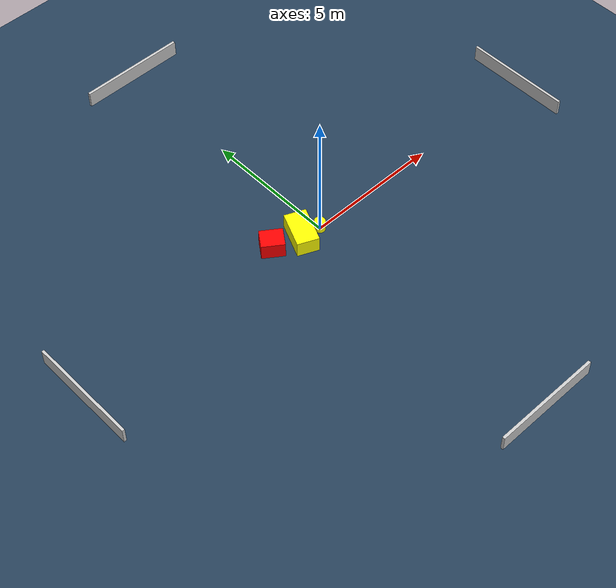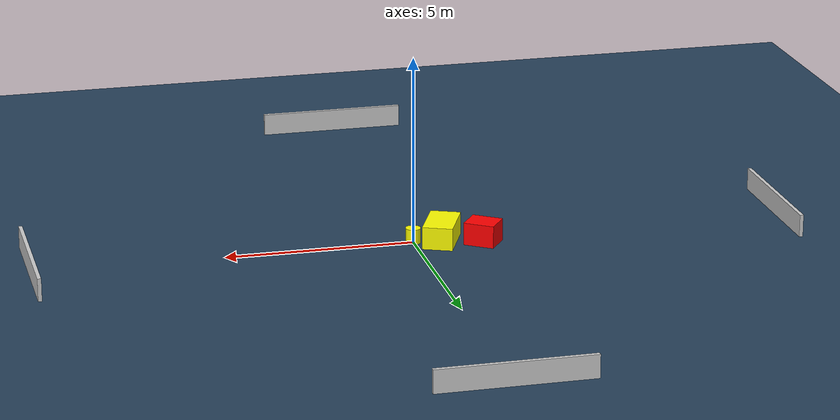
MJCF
<?xml version="1.0" ?>
<mujoco model="generated_environment">
  <option timestep="0.01" integrator="RK4" cone="elliptic"/>
  <default>
    <geom density="1"/>
  </default>
  <asset>
    <texture builtin="gradient" height="3072" name="skybox" rgb1="0.3 0.5 0.7" rgb2="0 0 0" type="skybox" width="512"/>
    <texture builtin="checker" height="300" name="groundplane" rgb1="0.2 0.3 0.4" rgb2="0.1 0.2 0.3" type="2d" width="300"/>
    <material name="groundplane" reflectance="0.2" texrepeat="5 5" texture="groundplane"/>
  </asset>
  <worldbody>
    <light dir="0 0 -1" directional="true" pos="0 0 1.5"/>
    <geom condim="3" friction="0.5 0.005 0.001" material="groundplane" name="floor" pos="0 0 0" size="0 0 0.05" type="plane"/>
    <body name="walls">
      <geom name="wall_1" condim="4" pos="-10.0 0.0 0.3" rgba="0.800000011920929 0.800000011920929 0.800000011920929 1.0" size="0.05 2.0 0.3" type="box"/>
      <geom name="wall_2" condim="4" pos="10.0 0.0 0.3" rgba="0.800000011920929 0.800000011920929 0.800000011920929 1.0" size="0.05 2.0 0.3" type="box"/>
      <geom name="wall_3" condim="4" pos="0.0 -10.0 0.3" rgba="0.800000011920929 0.800000011920929 0.800000011920929 1.0" size="2.0 0.05 0.3" type="box"/>
      <geom name="wall_4" condim="4" pos="0.0 10.0 0.3" rgba="0.800000011920929 0.800000011920929 0.800000011920929 1.0" size="2.0 0.05 0.3" type="box"/>
    </body>
    <body name="robot">
      <joint name="joint_x" type="slide" pos="0 0 0" axis="1 0 0"/>
      <joint name="joint_y" type="slide" pos="0 0 0" axis="0 1 0"/>
      <geom name="robot" type="cylinder" pos="0.0 0.0 0.2" size="0.2 0.2 0.0" mass="5.0" friction="1.0 0.005 0.0001" condim="4" rgba="1.0 1.0 0.0 1.0"/>
    </body>
    <body name="obstacle_1_movable">
      <geom name="obstacle_1_movable" condim="4" pos="-0.7346205562743475 0.11352832703845997 0.3" euler="0 0 66.54483597228801" friction="0.0 0.005 0.001" rgba="1.0 1.0 0.0 1.0" size="0.6816905537831529 0.40047674917898196 0.3" type="box" mass="0.1"/>
      <joint type="free"/>
    </body>
    <body name="obstacle_2_static">
      <geom name="obstacle_2_static" condim="4" pos="-1.7701142279805517 0.4471470934139434 0.3" euler="0 0 324.8175173620465" friction="0.0 0.005 0.001" rgba="1.0 0.0 0.0 1.0" size="0.4123631260938114 0.35613726338603885 0.3" type="box"/>
    </body>
  </worldbody>
  <actuator>
    <motor name="actuator_x" joint="joint_x" gear="1" ctrlrange="-1 1"/>
    <motor name="actuator_y" joint="joint_y" gear="1" ctrlrange="-1 1"/>
  </actuator>
</mujoco>
